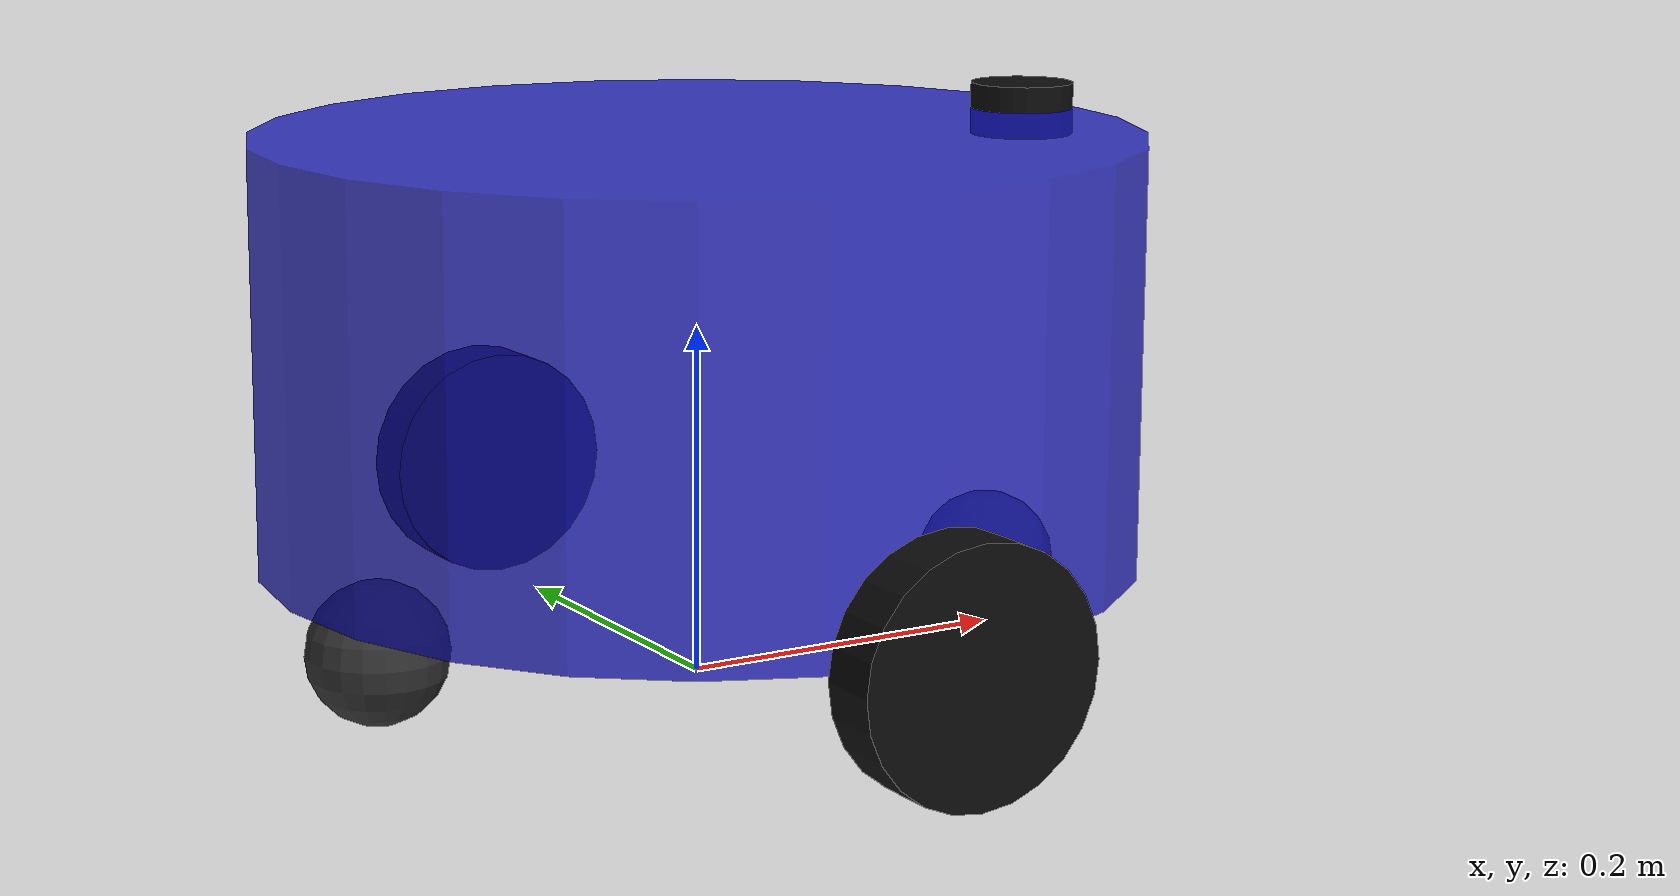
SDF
<?xml version="1.0" ?>
<sdf version="1.7">
  <model name="diff_bot">
    <static>false</static>

    <link name="base_footprint"/>

    <link name="base_link">
      <pose relative_to="base_footprint">0 0 0.07 0 0 0</pose>
      <inertial>
        <pose>0 0 0.12 0 0 0</pose>
        <mass>15.0</mass>
        <inertia>
          <ixx>0.6</ixx>
          <ixy>0</ixy>
          <ixz>0</ixz>
          <iyy>0.6</iyy>
          <iyz>0</iyz>
          <izz>0.6</izz>
        </inertia>
      </inertial>
      <collision name="base_collision">
        <pose>0 0 0.12 0 0 0</pose>
        <geometry>
          <cylinder>
            <radius>0.25</radius>
            <length>0.24</length>
          </cylinder>
        </geometry>
      </collision>
      <visual name="base_visual">
        <pose>0 0 0.12 0 0 0</pose>
        <geometry>
          <cylinder>
            <radius>0.25</radius>
            <length>0.24</length>
          </cylinder>
        </geometry>
        <material>
          <ambient>0.1 0.1 0.8 0.8</ambient>
          <diffuse>0.1 0.1 0.8 0.8</diffuse>
          <specular>0.5 0.5 0.5 1</specular>
        </material>
      </visual>
    </link>

    <joint name="base_footprint_joint" type="fixed">
      <parent>base_footprint</parent>
      <child>base_link</child>
    </joint>

    <link name="left_wheel">
      <pose relative_to="left_wheel_joint">0 0 0 0 0 0</pose>
      <inertial>
        <mass>1.5</mass>
        <inertia>
          <ixx>0.01</ixx><ixy>0</ixy><ixz>0</ixz>
          <iyy>0.01</iyy><iyz>0</iyz>
          <izz>0.01</izz>
        </inertia>
      </inertial>
      <collision name="left_wheel_collision">
        <pose>0 0 0 1.5708 0 0</pose>
        <geometry>
          <cylinder>
            <radius>0.07</radius>
            <length>0.035</length>
          </cylinder>
        </geometry>
        <surface>
          <friction>
            <ode><mu>1.0</mu><mu2>1.0</mu2></ode>
          </friction>
        </surface>
      </collision>
      <visual name="left_wheel_visual">
        <pose>0 0 0 1.5708 0 0</pose>
        <geometry>
          <cylinder>
            <radius>0.07</radius>
            <length>0.035</length>
          </cylinder>
        </geometry>
        <material>
          <ambient>0.05 0.05 0.05 1</ambient>
          <diffuse>0.05 0.05 0.05 1</diffuse>
        </material>
      </visual>
    </link>

    <joint name="left_wheel_joint" type="revolute">
      <pose relative_to="base_link">0 0.2675 0 0 0 0</pose>
      <parent>base_link</parent>
      <child>left_wheel</child>
      <axis>
        <xyz>0 1 0</xyz>
        <limit>
          <lower>-1e16</lower>
          <upper>1e16</upper>
        </limit>
      </axis>
    </joint>

    <link name="right_wheel">
      <pose relative_to="right_wheel_joint">0 0 0 0 0 0</pose>
      <inertial>
        <mass>1.5</mass>
        <inertia>
          <ixx>0.01</ixx><ixy>0</ixy><ixz>0</ixz>
          <iyy>0.01</iyy><iyz>0</iyz>
          <izz>0.01</izz>
        </inertia>
      </inertial>
      <collision name="right_wheel_collision">
        <pose>0 0 0 1.5708 0 0</pose>
        <geometry>
          <cylinder>
            <radius>0.07</radius>
            <length>0.035</length>
          </cylinder>
        </geometry>
        <surface>
          <friction>
            <ode><mu>1.0</mu><mu2>1.0</mu2></ode>
          </friction>
        </surface>
      </collision>
      <visual name="right_wheel_visual">
        <pose>0 0 0 1.5708 0 0</pose>
        <geometry>
          <cylinder>
            <radius>0.07</radius>
            <length>0.035</length>
          </cylinder>
        </geometry>
        <material>
          <ambient>0.05 0.05 0.05 1</ambient>
          <diffuse>0.05 0.05 0.05 1</diffuse>
        </material>
      </visual>
    </link>

    <joint name="right_wheel_joint" type="revolute">
      <pose relative_to="base_link">0 -0.2675 0 0 0 0</pose>
      <parent>base_link</parent>
      <child>right_wheel</child>
      <axis>
        <xyz>0 1 0</xyz>
        <limit>
          <lower>-1e16</lower>
          <upper>1e16</upper>
        </limit>
      </axis>
    </joint>

    <link name="front_support">
      <pose relative_to="front_support_joint">0 0 -0.03 0 0 0</pose>
      <inertial>
        <mass>0.1</mass>
        <inertia>
          <ixx>0.0001</ixx><ixy>0</ixy><ixz>0</ixz>
          <iyy>0.0001</iyy><iyz>0</iyz>
          <izz>0.0001</izz>
        </inertia>
      </inertial>
      <collision name="front_support_collision">
        <geometry><sphere><radius>0.04</radius></sphere></geometry>
        <surface>
          <friction>
            <ode><mu>0.1</mu><mu2>0.1</mu2></ode>
          </friction>
        </surface>
      </collision>
      <visual name="front_support_visual">
        <geometry><sphere><radius>0.04</radius></sphere></geometry>
        <material>
          <ambient>0.2 0.2 0.2 1</ambient>
          <diffuse>0.2 0.2 0.2 1</diffuse>
        </material>
      </visual>
    </link>

    <joint name="front_support_joint" type="fixed">
      <pose relative_to="base_link">0.2 0 0 0 0 0</pose>
      <parent>base_link</parent>
      <child>front_support</child>
    </joint>

    <link name="back_support">
      <pose relative_to="back_support_joint">0 0 -0.03 0 0 0</pose>
      <inertial>
        <mass>0.1</mass>
        <inertia>
          <ixx>0.0001</ixx><ixy>0</ixy><ixz>0</ixz>
          <iyy>0.0001</iyy><iyz>0</iyz>
          <izz>0.0001</izz>
        </inertia>
      </inertial>
      <collision name="back_support_collision">
        <geometry><sphere><radius>0.04</radius></sphere></geometry>
        <surface>
          <friction>
            <ode><mu>0.1</mu><mu2>0.1</mu2></ode>
          </friction>
        </surface>
      </collision>
      <visual name="back_support_visual">
        <geometry><sphere><radius>0.04</radius></sphere></geometry>
        <material>
          <ambient>0.2 0.2 0.2 1</ambient>
          <diffuse>0.2 0.2 0.2 1</diffuse>
        </material>
      </visual>
    </link>

    <joint name="back_support_joint" type="fixed">
      <pose relative_to="base_link">-0.2 0 0 0 0 0</pose>
      <parent>base_link</parent>
      <child>back_support</child>
    </joint>

    <link name="lidar_link">
      <pose relative_to="lidar_joint">0 0 0 0 0 0</pose>
      <inertial>
        <mass>0.1</mass>
        <inertia>
          <ixx>0.0001</ixx><ixy>0</ixy><ixz>0</ixz>
          <iyy>0.0001</iyy><iyz>0</iyz>
          <izz>0.0001</izz>
        </inertia>
      </inertial>
      <visual name="lidar_visual">
        <geometry><cylinder><radius>0.03</radius><length>0.03</length></cylinder></geometry>
        <material>
          <ambient>0.05 0.05 0.05 1</ambient>
          <diffuse>0.05 0.05 0.05 1</diffuse>
        </material>
      </visual>
      <collision name="lidar_collision">
        <geometry><cylinder><radius>0.03</radius><length>0.03</length></cylinder></geometry>
      </collision>
      <sensor name="rplidar" type="gpu_lidar">
        <pose>0 0 0 0 0 0</pose>
        <update_rate>10</update_rate>
        <lidar>
          <scan>
            <horizontal>
              <samples>640</samples>
              <resolution>1</resolution>
              <min_angle>-3.14159</min_angle>
              <max_angle>3.14159</max_angle>
            </horizontal>
          </scan>
          <range>
            <min>0.1</min>
            <max>10.0</max>
          </range>
        </lidar>
        <always_on>1</always_on>
        <visualize>true</visualize>
        <topic>/scan</topic>
      </sensor>
    </link>

    <joint name="lidar_joint" type="fixed">

      <pose relative_to="base_link">0.22 0 0.24 0 0 0</pose>
      <parent>base_link</parent>
      <child>lidar_link</child>
    </joint>

    <plugin filename="gz-sim-diff-drive-system" name="gz::sim::systems::DiffDrive">
      <left_joint>left_wheel_joint</left_joint>
      <right_joint>right_wheel_joint</right_joint>
      <wheel_separation>0.535</wheel_separation>
      <wheel_radius>0.07</wheel_radius>
      <odom_publish_frequency>50</odom_publish_frequency>
      <cmd_vel_topic>/cmd_vel</cmd_vel_topic>
      <odom_topic>/odom</odom_topic>
      <odometry_frame>odom</odometry_frame>
      <base_frame>base_footprint</base_frame>
      <publish_odom>true</publish_odom>
      <publish_odom_tf>true</publish_odom_tf>
    </plugin>

    <plugin filename="gz-sim-joint-state-publisher-system" name="gz::sim::systems::JointStatePublisher">
      <topic>/joint_states</topic>
      <joint_name>left_wheel_joint</joint_name> <!-- Change to your exact left wheel joint name -->
      <joint_name>right_wheel_joint</joint_name>
    </plugin>

  </model>
</sdf>
